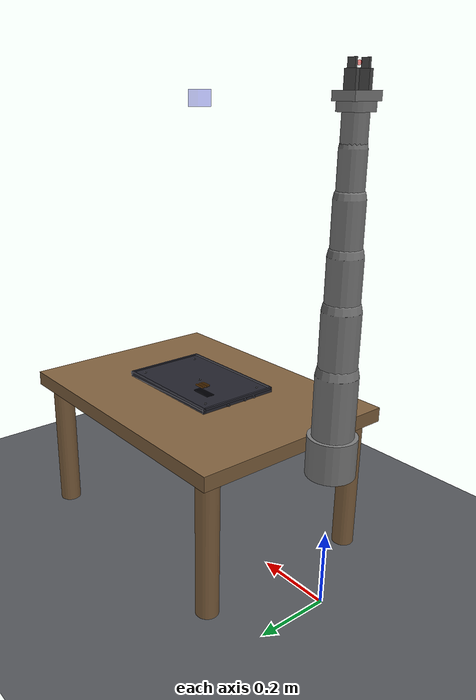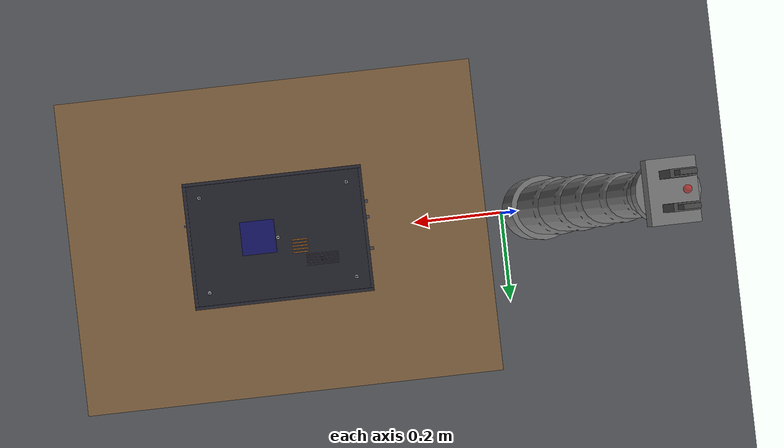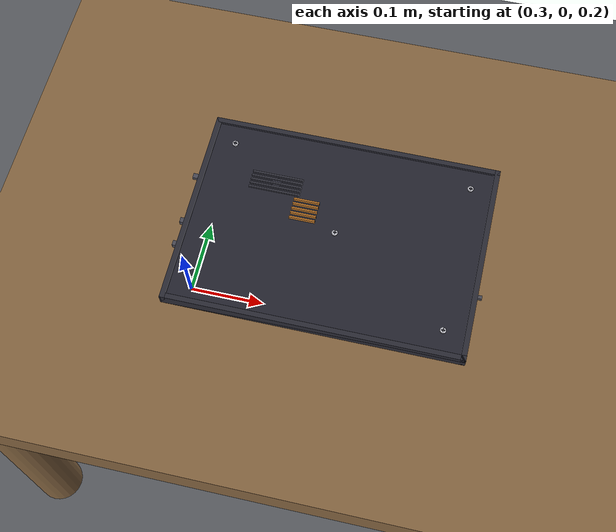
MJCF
<mujoco model="disassembly_arm">
  <compiler angle="radian" meshdir="../meshes/" />

  <option timestep="0.002" gravity="0 0 -9.81" integrator="implicitfast" />

  <visual>
    <global offwidth="2560" offheight="1440" />
  </visual>

  <default>
    <joint damping="1.0" armature="0.1" />
    <geom condim="4" friction="1.0 0.005 0.0001" />
    <motor ctrllimited="true" />
    <default class="robot">
      <geom rgba="0.5 0.5 0.5 1" />
    </default>
    <default class="finger">
      <geom rgba="0.3 0.3 0.3 1" friction="2.0 0.01 0.001" />
    </default>
    <default class="visual">
      <geom contype="0" conaffinity="0" group="1" />
    </default>
  <default class="device_body">
      <geom friction="0.8 0.005 0.001" />
    </default>
    <default class="screw">
      <geom friction="0.3 0.001 0.0001" />
      <joint damping="0.5" />
    </default>
    <default class="connector">
      <geom friction="1.5 0.01 0.001" />
    </default>
  </default>

  <asset>
    <texture name="grid" type="2d" builtin="checker" rgb1="0.32 0.33 0.35" rgb2="0.36 0.37 0.39" width="512" height="512" />
    <texture name="wood_tex" type="2d" builtin="gradient" rgb1="0.55 0.42 0.28" rgb2="0.48 0.36 0.22" width="256" height="256" />
    <material name="grid_mat" texture="grid" texrepeat="10 10" reflectance="0.04" specular="0.15" shininess="0.3" />
    <material name="robot_mat" rgba="0.72 0.72 0.74 1" specular="0.6" shininess="0.7" reflectance="0.08" />
    <material name="workbench_mat" texture="wood_tex" texrepeat="3 2" specular="0.15" shininess="0.2" reflectance="0.03" />
  <texture name="pcb_tex" type="2d" builtin="checker" rgb1="0.02 0.30 0.05" rgb2="0.01 0.22 0.03" width="128" height="128" />
    <material name="shell_dark" rgba="0.16 0.16 0.20 1" specular="0.7" shininess="0.85" reflectance="0.12" />
    <material name="shell_inner" rgba="0.22 0.22 0.26 1" specular="0.3" />
    <material name="panel_mat" rgba="0.14 0.14 0.18 1" specular="0.6" shininess="0.8" reflectance="0.1" />
    <material name="pcb_mat" texture="pcb_tex" texrepeat="4 3" specular="0.15" />
    <material name="batt_mat" rgba="0.06 0.06 0.06 1" specular="0.04" />
    <material name="batt_label" rgba="0.12 0.12 0.38 1" specular="0.1" />
    <material name="ram_mat" rgba="0.04 0.42 0.10 1" specular="0.3" shininess="0.4" />
    <material name="ram_chip" rgba="0.08 0.08 0.10 1" specular="0.5" shininess="0.6" />
    <material name="ssd_mat" rgba="0.10 0.10 0.16 1" specular="0.4" shininess="0.5" />
    <material name="screw_mat" rgba="0.75 0.75 0.78 1" specular="0.9" shininess="0.95" reflectance="0.3" />
    <material name="fan_mat" rgba="0.13 0.13 0.16 1" specular="0.25" />
    <material name="blade_mat" rgba="0.18 0.18 0.22 1" specular="0.2" />
    <material name="hs_mat" rgba="0.72 0.45 0.15 1" specular="0.6" shininess="0.7" reflectance="0.2" />
    <material name="pipe_mat" rgba="0.75 0.50 0.20 1" specular="0.7" shininess="0.8" reflectance="0.25" />
    <material name="conn_wh" rgba="0.92 0.90 0.85 1" specular="0.3" />
    <material name="conn_bk" rgba="0.04 0.04 0.04 1" specular="0.2" />
    <material name="rubber_ft" rgba="0.12 0.12 0.12 1" specular="0.04" />
    <material name="port_mat" rgba="0.28 0.28 0.32 1" specular="0.4" />
    <material name="gold_pin" rgba="0.85 0.70 0.15 1" specular="0.7" shininess="0.8" />
    <material name="label_wh" rgba="0.88 0.88 0.90 1" specular="0.1" />
    <material name="warn_yel" rgba="0.95 0.85 0.10 1" specular="0.2" />
    <material name="trace_mat" rgba="0.60 0.52 0.12 1" specular="0.3" />
  </asset>

  <worldbody>

    <geom name="floor" type="plane" size="1.5 1.5 0.01" material="grid_mat" />

    <body name="workbench" pos="0.5 0 0.4">
      <geom name="table_top" type="box" size="0.4 0.3 0.02" material="workbench_mat" mass="50" contype="1" conaffinity="1" />
      <geom name="leg1" type="cylinder" size="0.03 0.2" pos="-0.35 -0.25 -0.22" material="workbench_mat" mass="5" />
      <geom name="leg2" type="cylinder" size="0.03 0.2" pos="0.35 -0.25 -0.22" material="workbench_mat" mass="5" />
      <geom name="leg3" type="cylinder" size="0.03 0.2" pos="-0.35 0.25 -0.22" material="workbench_mat" mass="5" />
      <geom name="leg4" type="cylinder" size="0.03 0.2" pos="0.35 0.25 -0.22" material="workbench_mat" mass="5" />
    </body>

    <body name="base_link" pos="0 0 0.42" childclass="robot">
      <geom type="cylinder" size="0.06 0.05" mass="2" />
      <body name="link1" pos="0 0 0.05">
        <joint name="joint1" type="hinge" axis="0 0 1" range="-2.8973 2.8973" />
        <geom type="capsule" fromto="0 0 0 0 0 0.15" size="0.05" mass="3" />
        <body name="link2" pos="0 0 0.15">
          <joint name="joint2" type="hinge" axis="0 1 0" range="-1.7628 1.7628" />
          <geom type="capsule" fromto="0 0 0 0 0 0.15" size="0.045" mass="2.5" />
          <body name="link3" pos="0 0 0.15">
            <joint name="joint3" type="hinge" axis="0 0 1" range="-2.8973 2.8973" />
            <geom type="capsule" fromto="0 0 0 0 0 0.12" size="0.04" mass="2" />
            <body name="link4" pos="0 0 0.12">
              <joint name="joint4" type="hinge" axis="0 -1 0" range="-3.0718 -0.0698" />
              <geom type="capsule" fromto="0 0 0 0 0 0.12" size="0.035" mass="1.5" />
              <body name="link5" pos="0 0 0.12">
                <joint name="joint5" type="hinge" axis="0 0 1" range="-2.8973 2.8973" />
                <geom type="capsule" fromto="0 0 0 0 0 0.1" size="0.03" mass="1.2" />
                <body name="link6" pos="0 0 0.1">
                  <joint name="joint6" type="hinge" axis="0 1 0" range="-0.0175 3.7525" />
                  <geom type="capsule" fromto="0 0 0 0 0 0.08" size="0.028" mass="1" />
                  <body name="link7" pos="0 0 0.08">
                    <joint name="joint7" type="hinge" axis="0 0 1" range="-2.8973 2.8973" />
                    <geom type="cylinder" size="0.04 0.01" mass="0.5" />

                    <body name="gripper_base" pos="0 0 0.02">
                      <geom type="box" size="0.03 0.04 0.01" mass="0.3" />

                      <body name="left_finger" pos="0 -0.02 0.02" childclass="finger">
                        <joint name="finger_left" type="slide" axis="0 1 0" range="0 0.04" damping="10" stiffness="5" />
                        <geom type="box" size="0.015 0.005 0.03" mass="0.05" />
                        <geom name="left_fingertip" type="box" size="0.01 0.003 0.01" pos="0 0 0.04" mass="0.02" />
                      </body>

                      <body name="right_finger" pos="0 0.02 0.02" childclass="finger">
                        <joint name="finger_right" type="slide" axis="0 -1 0" range="0 0.04" damping="10" stiffness="5" />
                        <geom type="box" size="0.015 0.005 0.03" mass="0.05" />
                        <geom name="right_fingertip" type="box" size="0.01 0.003 0.01" pos="0 0 0.04" mass="0.02" />
                      </body>

                      <site name="wrist_cam" pos="0 0 -0.01" euler="0 3.14159 0" type="box" size="0.01 0.01 0.01" rgba="0 0 1 0.3" />

                      <site name="ee_site" pos="0 0 0.06" type="sphere" size="0.005" rgba="1 0 0 0.5" />

                      <site name="ft_sensor" pos="0 0 0" type="sphere" size="0.003" rgba="0 1 0 0.3" />
                    </body>
                  </body>
                </body>
              </body>
            </body>
          </body>
        </body>
      </body>
    </body>

    <body name="overhead_cam_mount" pos="0.5 0 1.2">
      <site name="overhead_cam" type="box" size="0.02 0.02 0.02" rgba="0 0 1 0.3" />
    </body>

    <light name="key_light" pos="0.5 -0.3 1.4" dir="0 0.15 -1" diffuse="0.9 0.85 0.8" specular="0.5 0.5 0.5" cutoff="55" />

    <light name="fill_light" pos="-0.3 0.5 1.0" dir="0.3 -0.2 -0.8" diffuse="0.35 0.38 0.42" specular="0.1 0.1 0.1" cutoff="80" />

    <light name="rim_light" pos="0.5 0.5 1.3" dir="0 -0.4 -0.8" diffuse="0.25 0.25 0.3" specular="0.2 0.2 0.2" cutoff="70" />

    <light name="ambient" pos="0 0 2" diffuse="0.18 0.18 0.20" directional="true" />
  <body name="laptop_base" pos="0.5 0 0.44">

      <geom name="chassis_bottom" type="box" size="0.17 0.12 0.004" material="shell_dark" mass="0.5" />

      <geom name="rim_f" type="box" size="0.17 0.003 0.007" pos="0 -0.117 0.003" material="shell_dark" mass="0.02" />
      <geom name="rim_b" type="box" size="0.17 0.003 0.007" pos="0 0.117 0.003" material="shell_dark" mass="0.02" />
      <geom name="rim_l" type="box" size="0.003 0.12 0.007" pos="-0.167 0 0.003" material="shell_dark" mass="0.02" />
      <geom name="rim_r" type="box" size="0.003 0.12 0.007" pos="0.167 0 0.003" material="shell_dark" mass="0.02" />

      <geom name="foot_fl" type="cylinder" size="0.006 0.002" pos="-0.14 -0.10 -0.006" material="rubber_ft" mass="0.005" />
      <geom name="foot_fr" type="cylinder" size="0.006 0.002" pos="0.14 -0.10 -0.006" material="rubber_ft" mass="0.005" />
      <geom name="foot_bl" type="cylinder" size="0.006 0.002" pos="-0.14 0.10 -0.006" material="rubber_ft" mass="0.005" />
      <geom name="foot_br" type="cylinder" size="0.006 0.002" pos="0.14 0.10 -0.006" material="rubber_ft" mass="0.005" />

      <geom name="usb1" type="box" size="0.006 0.003 0.003" pos="-0.170 -0.05 0.001" material="port_mat" mass="0.001" contype="0" conaffinity="0" />
      <geom name="usb2" type="box" size="0.006 0.003 0.003" pos="-0.170 -0.02 0.001" material="port_mat" mass="0.001" contype="0" conaffinity="0" />
      <geom name="hdmi" type="box" size="0.008 0.003 0.002" pos="-0.170 0.04 0.001" material="port_mat" mass="0.001" contype="0" conaffinity="0" />
      <geom name="usbc" type="box" size="0.005 0.002 0.002" pos="0.170 -0.04 0.001" material="port_mat" mass="0.001" contype="0" conaffinity="0" />

      <geom name="prod_label" type="box" size="0.04 0.02 0.0005" pos="0.06 0.06 -0.005" material="label_wh" mass="0.001" contype="0" conaffinity="0" />

      <body name="back_panel" pos="0 0 0.005">
        <joint name="panel_slide_z" type="slide" axis="0 0 1" range="0 0.25" stiffness="500" damping="50" />
        <geom name="back_panel_geom" type="box" size="0.165 0.115 0.002" material="panel_mat" mass="0.12" />

        <geom name="vent1" type="box" size="0.03 0.001 0.0025" pos="-0.08 0.058 0.002" material="shell_inner" mass="0.001" contype="0" conaffinity="0" />
        <geom name="vent2" type="box" size="0.03 0.001 0.0025" pos="-0.08 0.053 0.002" material="shell_inner" mass="0.001" contype="0" conaffinity="0" />
        <geom name="vent3" type="box" size="0.03 0.001 0.0025" pos="-0.08 0.048 0.002" material="shell_inner" mass="0.001" contype="0" conaffinity="0" />
        <geom name="vent4" type="box" size="0.03 0.001 0.0025" pos="-0.08 0.043 0.002" material="shell_inner" mass="0.001" contype="0" conaffinity="0" />
        <geom name="vent5" type="box" size="0.03 0.001 0.0025" pos="-0.08 0.038 0.002" material="shell_inner" mass="0.001" contype="0" conaffinity="0" />

        <body name="screw_1" pos="-0.14 -0.09 0.002" childclass="screw">
          <joint name="screw_1_turn" type="hinge" axis="0 0 1" range="0 31.4159" stiffness="2.0" damping="0.3" />
          <joint name="screw_1_slide" type="slide" axis="0 0 1" range="0 0.06" stiffness="100" damping="5" />
          <geom name="screw_1_head" type="cylinder" size="0.0035 0.0015" material="screw_mat" mass="0.002" />
          <geom name="s1xa" type="box" size="0.002 0.0004 0.0005" pos="0 0 0.002" material="shell_inner" mass="0.0001" contype="0" conaffinity="0" />
          <geom name="s1xb" type="box" size="0.0004 0.002 0.0005" pos="0 0 0.002" material="shell_inner" mass="0.0001" contype="0" conaffinity="0" />
          <geom name="screw_1_shaft" type="cylinder" size="0.0012 0.005" pos="0 0 -0.004" material="screw_mat" mass="0.001" />
          <site name="screw_1_site" pos="0 0 0.003" type="sphere" size="0.004" rgba="0 0 0 0" />
        </body>
        <body name="screw_2" pos="0.14 -0.09 0.002" childclass="screw">
          <joint name="screw_2_turn" type="hinge" axis="0 0 1" range="0 31.4159" stiffness="2.0" damping="0.3" />
          <joint name="screw_2_slide" type="slide" axis="0 0 1" range="0 0.06" stiffness="100" damping="5" />
          <geom name="screw_2_head" type="cylinder" size="0.0035 0.0015" material="screw_mat" mass="0.002" />
          <geom name="s2xa" type="box" size="0.002 0.0004 0.0005" pos="0 0 0.002" material="shell_inner" mass="0.0001" contype="0" conaffinity="0" />
          <geom name="s2xb" type="box" size="0.0004 0.002 0.0005" pos="0 0 0.002" material="shell_inner" mass="0.0001" contype="0" conaffinity="0" />
          <geom name="screw_2_shaft" type="cylinder" size="0.0012 0.005" pos="0 0 -0.004" material="screw_mat" mass="0.001" />
          <site name="screw_2_site" pos="0 0 0.003" type="sphere" size="0.004" rgba="0 0 0 0" />
        </body>
        <body name="screw_3" pos="-0.14 0.09 0.002" childclass="screw">
          <joint name="screw_3_turn" type="hinge" axis="0 0 1" range="0 31.4159" stiffness="2.0" damping="0.3" />
          <joint name="screw_3_slide" type="slide" axis="0 0 1" range="0 0.06" stiffness="100" damping="5" />
          <geom name="screw_3_head" type="cylinder" size="0.0035 0.0015" material="screw_mat" mass="0.002" />
          <geom name="s3xa" type="box" size="0.002 0.0004 0.0005" pos="0 0 0.002" material="shell_inner" mass="0.0001" contype="0" conaffinity="0" />
          <geom name="s3xb" type="box" size="0.0004 0.002 0.0005" pos="0 0 0.002" material="shell_inner" mass="0.0001" contype="0" conaffinity="0" />
          <geom name="screw_3_shaft" type="cylinder" size="0.0012 0.005" pos="0 0 -0.004" material="screw_mat" mass="0.001" />
          <site name="screw_3_site" pos="0 0 0.003" type="sphere" size="0.004" rgba="0 0 0 0" />
        </body>
        <body name="screw_4" pos="0.14 0.09 0.002" childclass="screw">
          <joint name="screw_4_turn" type="hinge" axis="0 0 1" range="0 31.4159" stiffness="2.0" damping="0.3" />
          <joint name="screw_4_slide" type="slide" axis="0 0 1" range="0 0.06" stiffness="100" damping="5" />
          <geom name="screw_4_head" type="cylinder" size="0.0035 0.0015" material="screw_mat" mass="0.002" />
          <geom name="s4xa" type="box" size="0.002 0.0004 0.0005" pos="0 0 0.002" material="shell_inner" mass="0.0001" contype="0" conaffinity="0" />
          <geom name="s4xb" type="box" size="0.0004 0.002 0.0005" pos="0 0 0.002" material="shell_inner" mass="0.0001" contype="0" conaffinity="0" />
          <geom name="screw_4_shaft" type="cylinder" size="0.0012 0.005" pos="0 0 -0.004" material="screw_mat" mass="0.001" />
          <site name="screw_4_site" pos="0 0 0.003" type="sphere" size="0.004" rgba="0 0 0 0" />
        </body>
        <body name="screw_5" pos="0 0 0.002" childclass="screw">
          <joint name="screw_5_turn" type="hinge" axis="0 0 1" range="0 31.4159" stiffness="2.0" damping="0.3" />
          <joint name="screw_5_slide" type="slide" axis="0 0 1" range="0 0.06" stiffness="100" damping="5" />
          <geom name="screw_5_head" type="cylinder" size="0.0035 0.0015" material="screw_mat" mass="0.002" />
          <geom name="s5xa" type="box" size="0.002 0.0004 0.0005" pos="0 0 0.002" material="shell_inner" mass="0.0001" contype="0" conaffinity="0" />
          <geom name="s5xb" type="box" size="0.0004 0.002 0.0005" pos="0 0 0.002" material="shell_inner" mass="0.0001" contype="0" conaffinity="0" />
          <geom name="screw_5_shaft" type="cylinder" size="0.0012 0.005" pos="0 0 -0.004" material="screw_mat" mass="0.001" />
          <site name="screw_5_site" pos="0 0 0.003" type="sphere" size="0.004" rgba="0 0 0 0" />
        </body>
      </body>

      <body name="motherboard" pos="0.02 0 -0.003">
        <geom name="pcb_main" type="box" size="0.13 0.09 0.0008" material="pcb_mat" mass="0.12" />
        <geom name="cpu_die" type="box" size="0.015 0.015 0.002" pos="-0.04 0.02 0.002" rgba="0.11 0.11 0.14 1" mass="0.02" contype="0" conaffinity="0" />
        <geom name="gpu_die" type="box" size="0.012 0.012 0.0015" pos="-0.04 -0.03 0.002" rgba="0.09 0.09 0.12 1" mass="0.015" contype="0" conaffinity="0" />
        <geom name="pch" type="box" size="0.008 0.008 0.001" pos="0.04 0.02 0.002" rgba="0.13 0.13 0.16 1" mass="0.008" contype="0" conaffinity="0" />

        <geom name="tr1" type="box" size="0.0003 0.04 0.0002" pos="0.02 -0.01 0.001" material="trace_mat" mass="0.0001" contype="0" conaffinity="0" />
        <geom name="tr2" type="box" size="0.04 0.0003 0.0002" pos="-0.01 0.00 0.001" material="trace_mat" mass="0.0001" contype="0" conaffinity="0" />
        <geom name="tr3" type="box" size="0.0003 0.03 0.0002" pos="0.06 0.02 0.001" material="trace_mat" mass="0.0001" contype="0" conaffinity="0" />

        <geom name="smd1" type="box" size="0.02 0.001 0.0005" pos="0.06 -0.04 0.001" rgba="0.08 0.08 0.08 1" mass="0.001" contype="0" conaffinity="0" />
        <geom name="smd2" type="box" size="0.015 0.001 0.0005" pos="0.06 -0.035 0.001" rgba="0.08 0.08 0.08 1" mass="0.001" contype="0" conaffinity="0" />
        <site name="pcb_center" pos="0 0 0" type="sphere" size="0.003" rgba="0 0 0 0" />
        <site name="pcb_stress_zone" pos="0 0 0.001" type="box" size="0.13 0.09 0.001" rgba="0 0 0 0" />
      </body>

      <body name="battery" pos="-0.06 0 -0.001">
        <joint name="battery_connector" type="slide" axis="1 0 0" range="0 0.15" stiffness="200" damping="20" />
        <geom name="battery_cell" type="box" size="0.058 0.038 0.004" material="batt_mat" mass="0.25" />
        <geom name="batt_lbl" type="box" size="0.04 0.025 0.0005" pos="0 0 0.0045" material="batt_label" mass="0.001" contype="0" conaffinity="0" />
        <geom name="batt_warn" type="box" size="0.005 0.005 0.0005" pos="0.03 0.02 0.0046" material="warn_yel" mass="0.0001" contype="0" conaffinity="0" />
        <geom name="batt_tab_l" type="box" size="0.003 0.01 0.002" pos="-0.058 0 0" material="batt_mat" mass="0.002" />
        <geom name="batt_tab_r" type="box" size="0.003 0.01 0.002" pos="0.058 0 0" material="batt_mat" mass="0.002" />
        <site name="battery_puncture_zone" pos="0 0 0" type="box" size="0.058 0.038 0.004" rgba="0 0 0 0" />
        <body name="battery_plug" pos="0.06 0 0.002">
          <geom name="batt_ribbon" type="box" size="0.012 0.004 0.001" material="conn_wh" mass="0.005" />
          <geom name="batt_plug_tip" type="box" size="0.005 0.006 0.002" pos="0.012 0 0" material="conn_bk" mass="0.003" />
          <site name="battery_connector_site" pos="0.012 0 0.003" type="sphere" size="0.004" rgba="0 0 0 0" />
        </body>
      </body>

      <body name="ram_module" pos="0.10 0.04 -0.001">
        <joint name="ram_slot" type="slide" axis="0 0 1" range="0 0.08" stiffness="150" damping="10" />
        <joint name="ram_latch" type="hinge" axis="1 0 0" range="0 0.5" stiffness="3" damping="0.5" />
        <geom name="ram_pcb" type="box" size="0.033 0.013 0.0005" material="ram_mat" mass="0.008" />
        <geom name="rc1" type="box" size="0.005 0.004 0.001" pos="-0.022 0.005 0.0015" material="ram_chip" mass="0.001" contype="0" conaffinity="0" />
        <geom name="rc2" type="box" size="0.005 0.004 0.001" pos="-0.011 0.005 0.0015" material="ram_chip" mass="0.001" contype="0" conaffinity="0" />
        <geom name="rc3" type="box" size="0.005 0.004 0.001" pos="0.000 0.005 0.0015" material="ram_chip" mass="0.001" contype="0" conaffinity="0" />
        <geom name="rc4" type="box" size="0.005 0.004 0.001" pos="0.011 0.005 0.0015" material="ram_chip" mass="0.001" contype="0" conaffinity="0" />
        <geom name="rc5" type="box" size="0.005 0.004 0.001" pos="-0.022 -0.005 0.0015" material="ram_chip" mass="0.001" contype="0" conaffinity="0" />
        <geom name="rc6" type="box" size="0.005 0.004 0.001" pos="-0.011 -0.005 0.0015" material="ram_chip" mass="0.001" contype="0" conaffinity="0" />
        <geom name="rc7" type="box" size="0.005 0.004 0.001" pos="0.000 -0.005 0.0015" material="ram_chip" mass="0.001" contype="0" conaffinity="0" />
        <geom name="rc8" type="box" size="0.005 0.004 0.001" pos="0.011 -0.005 0.0015" material="ram_chip" mass="0.001" contype="0" conaffinity="0" />
        <geom name="ram_label" type="box" size="0.015 0.005 0.0003" pos="0.012 0 0.002" material="label_wh" mass="0.0001" contype="0" conaffinity="0" />
        <geom name="ram_pins" type="box" size="0.030 0.001 0.0003" pos="0 -0.013 -0.0005" material="gold_pin" mass="0.001" contype="0" conaffinity="0" />
        <site name="ram_site" pos="0 0 0.003" type="sphere" size="0.004" rgba="0 0 0 0" />
      </body>

      <body name="ssd_module" pos="0.10 -0.04 -0.001">
        <joint name="ssd_slot" type="slide" axis="1 0 0" range="0 0.10" stiffness="100" damping="8" />
        <geom name="ssd_pcb" type="box" size="0.033 0.011 0.0005" material="ssd_mat" mass="0.01" />
        <geom name="nand" type="box" size="0.008 0.008 0.001" pos="-0.010 0 0.0015" rgba="0.08 0.08 0.10 1" mass="0.005" contype="0" conaffinity="0" />
        <geom name="ssd_ctrl" type="box" size="0.005 0.005 0.0008" pos="0.015 0 0.0013" rgba="0.10 0.10 0.13 1" mass="0.003" contype="0" conaffinity="0" />
        <geom name="ssd_lbl" type="box" size="0.020 0.008 0.0003" pos="0 0 0.002" rgba="0.05 0.20 0.05 1" mass="0.0001" contype="0" conaffinity="0" />
        <geom name="ssd_edge" type="box" size="0.001 0.010 0.0005" pos="0.034 0 0" material="gold_pin" mass="0.001" contype="0" conaffinity="0" />
        <site name="ssd_site" pos="0 0 0.003" type="sphere" size="0.004" rgba="0 0 0 0" />
        <body name="ssd_screw" pos="-0.030 0 0.002" childclass="screw">
          <joint name="ssd_screw_turn" type="hinge" axis="0 0 1" range="0 31.4159" stiffness="1.5" damping="0.2" />
          <geom name="ssd_screw_head" type="cylinder" size="0.0025 0.001" material="screw_mat" mass="0.001" />
          <site name="ssd_screw_site" pos="0 0 0.002" type="sphere" size="0.003" rgba="0 0 0 0" />
        </body>
      </body>

      <body name="fan_assembly" pos="-0.08 0.05 -0.001">
        <joint name="fan_mount" type="slide" axis="0 0 1" range="0 0.10" stiffness="80" damping="5" />
        <geom name="fan_base" type="cylinder" size="0.022 0.005" material="fan_mat" mass="0.03" />
        <geom name="fan_hub" type="cylinder" size="0.006 0.003" pos="0 0 0.005" rgba="0.22 0.22 0.28 1" mass="0.005" contype="0" conaffinity="0" />
        <geom name="bl1" type="box" size="0.015 0.003 0.001" pos="0 0 0.006" material="blade_mat" mass="0.001" contype="0" conaffinity="0" />
        <geom name="bl2" type="box" size="0.003 0.015 0.001" pos="0 0 0.006" material="blade_mat" mass="0.001" contype="0" conaffinity="0" />
        <geom name="bl3" type="box" size="0.012 0.012 0.001" pos="0 0 0.006" euler="0 0 0.785" material="blade_mat" mass="0.001" contype="0" conaffinity="0" />
        <geom name="fan_conn" type="box" size="0.004 0.002 0.002" pos="0.022 0.01 0.003" material="conn_wh" mass="0.001" />
        <site name="fan_site" pos="0 0 0.007" type="sphere" size="0.004" rgba="0 0 0 0" />
      </body>

      <body name="heatsink" pos="-0.04 0.02 -0.001">
        <geom name="hs_base" type="box" size="0.018 0.018 0.002" material="hs_mat" mass="0.04" />
        <geom name="hpipe" type="capsule" fromto="0 0 0.003 -0.04 0.03 0.003" size="0.003" material="pipe_mat" mass="0.01" contype="0" conaffinity="0" />
        <geom name="fin1" type="box" size="0.015 0.001 0.006" pos="0 -0.012 0.006" material="hs_mat" mass="0.003" contype="0" conaffinity="0" />
        <geom name="fin2" type="box" size="0.015 0.001 0.006" pos="0 -0.006 0.006" material="hs_mat" mass="0.003" contype="0" conaffinity="0" />
        <geom name="fin3" type="box" size="0.015 0.001 0.006" pos="0 0.000 0.006" material="hs_mat" mass="0.003" contype="0" conaffinity="0" />
        <geom name="fin4" type="box" size="0.015 0.001 0.006" pos="0 0.006 0.006" material="hs_mat" mass="0.003" contype="0" conaffinity="0" />
        <geom name="fin5" type="box" size="0.015 0.001 0.006" pos="0 0.012 0.006" material="hs_mat" mass="0.003" contype="0" conaffinity="0" />
      </body>

    </body>
  </worldbody>

  <actuator>
    <motor name="act_joint1" joint="joint1" ctrlrange="-87 87" />
    <motor name="act_joint2" joint="joint2" ctrlrange="-87 87" />
    <motor name="act_joint3" joint="joint3" ctrlrange="-87 87" />
    <motor name="act_joint4" joint="joint4" ctrlrange="-87 87" />
    <motor name="act_joint5" joint="joint5" ctrlrange="-12 12" />
    <motor name="act_joint6" joint="joint6" ctrlrange="-12 12" />
    <motor name="act_joint7" joint="joint7" ctrlrange="-12 12" />
    <motor name="act_finger_left" joint="finger_left" ctrlrange="0 0.04" />
    <motor name="act_finger_right" joint="finger_right" ctrlrange="0 0.04" />
  </actuator>

  <sensor>
    <jointpos name="joint1_pos" joint="joint1" />
    <jointpos name="joint2_pos" joint="joint2" />
    <jointpos name="joint3_pos" joint="joint3" />
    <jointpos name="joint4_pos" joint="joint4" />
    <jointpos name="joint5_pos" joint="joint5" />
    <jointpos name="joint6_pos" joint="joint6" />
    <jointpos name="joint7_pos" joint="joint7" />
    <jointvel name="joint1_vel" joint="joint1" />
    <jointvel name="joint2_vel" joint="joint2" />
    <jointvel name="joint3_vel" joint="joint3" />
    <jointvel name="joint4_vel" joint="joint4" />
    <jointvel name="joint5_vel" joint="joint5" />
    <jointvel name="joint6_vel" joint="joint6" />
    <jointvel name="joint7_vel" joint="joint7" />
    <touch name="left_finger_touch" site="ft_sensor" />
  </sensor>
</mujoco>
